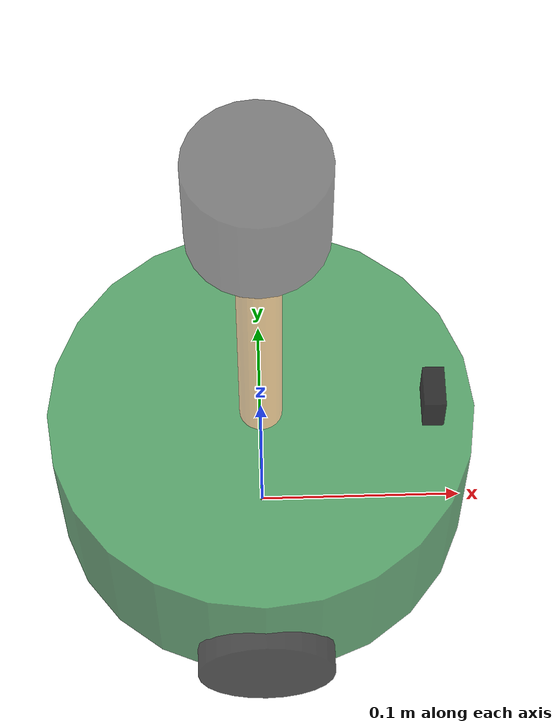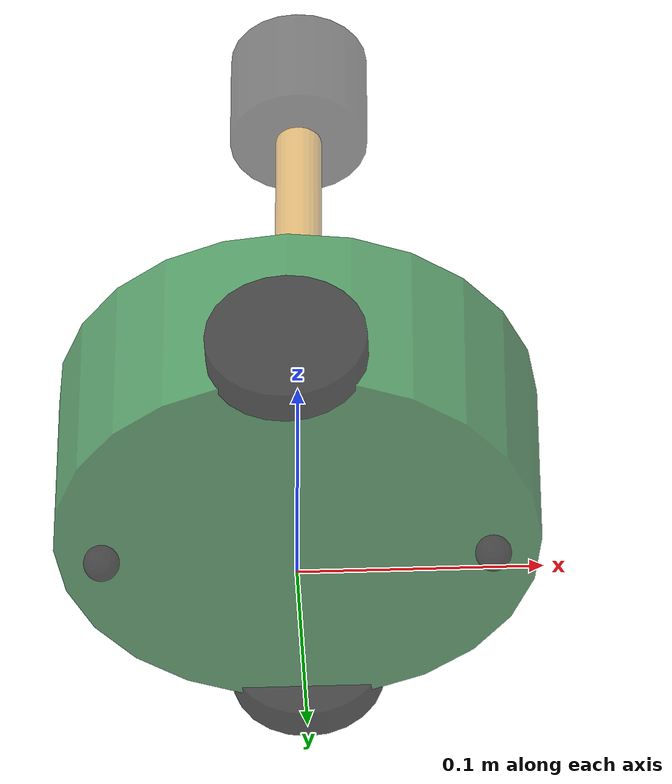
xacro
<robot name="mycar" xmlns:xacro="http://wiki.ros.org/xacro">

    <!-- 包含惯性矩阵文件 -->
    <xacro:include filename="head.xacro"/>
    <!--包含摄像头，雷达和车体的xacro文件 -->
    <xacro:include filename="demo05_car_base.urdf.xacro"/>
    <xacro:include filename="demo06_car_camera.urdf.xacro"/>
    <xacro:include filename="demo07_car_laser.urdf.xacro"/>
    <!-- 运动控制 -->
    <xacro:include filename="gazebo/move.xacro"/>
    <!-- 雷达-->
    <xacro:include filename="gazebo/laser.xacro"/>
    <!-- 摄像头-->
    <xacro:include filename="gazebo/camera.xacro"/>
    <!--kinect-->
    <xacro:include filename="gazebo/kinect.xacro"/>
</robot>

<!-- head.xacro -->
<robot name="base" xmlns:xacro="http://wiki.ros.org/xacro">
    <!-- Macro for inertia matrix -->
    <xacro:macro name="sphere_inertial_matrix" params="m r">
        <inertial>
            <mass value="${m}" />
            <inertia ixx="${2*m*r*r/5}" ixy="0" ixz="0"
                iyy="${2*m*r*r/5}" iyz="0"
                izz="${2*m*r*r/5}" />
        </inertial>
    </xacro:macro>

    <xacro:macro name="cylinder_inertial_matrix" params="m r h">
        <inertial>
            <mass value="${m}" />
            <inertia ixx="${m*(3*r*r+h*h)/12}" ixy="0" ixz="0"
                iyy="${m*(3*r*r+h*h)/12}" iyz="0"
                izz="${m*r*r/2}" />
        </inertial>
    </xacro:macro>

    <xacro:macro name="Box_inertial_matrix" params="m l w h">
        <inertial>
            <mass value="${m}" />
            <inertia ixx="${m*(w*w + l*l)/12}" ixy="0" ixz="0"
                iyy="${m*(w*w + l*l)/12}" iyz="0"
                izz="${m*(w*w + h*h)/12}" />
        </inertial>
    </xacro:macro>
</robot>

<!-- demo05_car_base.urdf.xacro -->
<robot name="mycar" xmlns:xacro="http://wiki.ros.org/xacro">

    <!-- 添加 base_footprint -->
    <!-- 属性 -->
    <xacro:property name="footprint_radius" value="0.001"/>
    <link name="base_footprint">
        <visual>
            <geometry>
                <sphere radius="${footprint_radius}"/>
            </geometry>
        </visual>
    </link>

    <!-- 2.添加底盘 -->
    <!--
        形状: 圆柱
        半径：0.1m
        高度: 0.08m
        离地: 0.015m
    -->
    <!-- 属性封装 -->
    <xacro:property name="base_radius" value="0.1" />
    <xacro:property name="base_length" value="0.08" />
    <xacro:property name="base_mass" value="3.5" />
    <xacro:property name="lidi" value="0.015" />
    <xacro:property name="base_joint_z" value="${base_length / 2 + lidi}" />
    <!-- 2-1.link -->
    <link name="base_link">
        <visual>
            <geometry>
                <cylinder radius="${base_radius}" length="${base_length}" />
            </geometry>

            <origin xyz="0.0 0.0 0.0" rpy="0.0 0.0 0.0"/>

            <material name="baselink_color">
                <color rgba="0.1 0.5 0.2 0.7"/>
            </material>
        </visual>

        <collision>
            <geometry>
                <cylinder radius="${base_radius}" length="${base_length}" />
            </geometry>

            <contact>
                <ode>
                    <min_depth>0.001</min_depth>
                </ode>
            </contact>

            <origin xyz="0.0 0.0 0.0" rpy="0.0 0.0 0.0"/>
        </collision>

        <!-- 调用惯性矩阵函数 -->
        <xacro:cylinder_inertial_matrix m="${base_mass}" r="${base_radius}" h="${base_length}" />
    </link>

        <!-- gezebo 有自己的颜色设置标签 -->
        <gazebo reference="base_link">
            <material>Gazebo/Yellow</material>
        </gazebo>

    <!-- 2-1.joint -->
    <joint name="link2footprint" type="fixed">
        <parent link="base_footprint"/>
        <child link="base_link"/>
        <!-- 关节z上的设置 = 车体高度/2 + 离地间距 -->
        <origin xyz="0 0 ${base_joint_z} " rpy="0 0 0"/>
        <axis xyz="0 0 0"/>
    </joint>

   <!-- 3.添加驱动轮 -->
    <!--
        形状: 圆柱
        半径: 0.0325m
        厚度: 0.015m
    -->
    <!-- 属性封装 -->
    <xacro:property name="wheel_radius" value="0.0325" />
    <xacro:property name="wheel_length" value="0.015" />
    <xacro:property name="wheel_mass" value="0.1" />
    <xacro:property name="PI" value="3.1415927" />
    <!-- 注意: 结果是负数 -->
    <xacro:property name="wheel_joint_z" value="${ (base_length / 2 + lidi -wheel_radius) * -1 }" />

    <!-- 函数封装(方便调用) 底盘就一个不需要调用 而驱动论有两个要调用两次 -->
    <!--
        wheel_name: left 或 right
        flag： 1 或 -1
    -->

    <xacro:macro name="wheel_func" params="wheel_name flag" >

        <!-- 3-1.link -->
        <link name="${wheel_name}_wheel">
            <visual>
                <geometry>
                    <cylinder radius="${wheel_radius}" length="${wheel_length}"/>
                </geometry>

                <origin xyz="0.0 0.0 0.0" rpy="${PI / 2} 0.0 0.0"/>

                <material name="wheel_color">
                    <color rgba="0 0 0 0.7"/>
                </material>
            </visual>
            <collision>
                <geometry>
                    <cylinder radius="${wheel_radius}" length="${wheel_length}"/>
                </geometry>

                <origin xyz="0.0 0.0 0.0" rpy="${PI / 2} 0.0 0.0"/>
            </collision>
            <xacro:cylinder_inertial_matrix m="${wheel_mass}" r="${wheel_radius}" h="${wheel_length}" />
        </link>
        <gazebo reference="${wheel_name}_wheel">
            <material>Gazebo/Red</material>
        </gazebo>

        <!-- 3-2.joint -->
        <joint name="${wheel_name}2link" type="continuous">
            <parent link="base_link"/>
            <child link="${wheel_name}_wheel"/>
            <!--
                x 无偏移
                y 车体半径
                z z = 车体高度/2 + 离地间距 - 车轮半径 记得加负号是负值
            -->
            <origin xyz="0 ${0.1 * flag} ${wheel_joint_z} " rpy="0.0 0.0 0.0"/>
            <axis xyz="0 1 0"/>
        </joint>

    </xacro:macro >
    <!-- 调用宏 -->
    <xacro:wheel_func wheel_name="left" flag="1" />
    <xacro:wheel_func wheel_name="right" flag="-1" />

    <!--  4.添加万向轮 -->
    <!--
        形状: 球
        半径:0.0075m
    -->
    <!-- 属性封装 -->
    <xacro:property name="small_wheel" value="0.0075" />
    <xacro:property name="small_wheel_mass" value="0.05" />
    <xacro:property name="small_joint_z" value="${ (base_length / 2 + lidi - small_wheel) * -1 }" />

    <xacro:macro name="small_wheel_func" params="small_wheel_name flag" >
        <!-- 4-1.link -->
        <link name="${small_wheel_name}_wheel">
            <visual>
                <geometry>
                    <sphere radius="${small_wheel}" />
                </geometry>

                <origin xyz="0.0 0.0 0.0" rpy="0.0 0.0 0.0"/>

                <material name="wheel_color">
                    <color rgba="0 0 0 0.7"/>
                </material>
            </visual>
            <collision>
                <geometry>
                    <sphere radius="${small_wheel}" />
                </geometry>

                <origin xyz="0.0 0.0 0.0" rpy="0.0 0.0 0.0"/>
            </collision>
            <xacro:sphere_inertial_matrix m="${small_wheel_mass}" r="${small_wheel}" />
        </link>
        <gazebo reference="${small_wheel_name}_wheel">
            <material>Gazebo/Red</material>
        </gazebo>

        <!-- 4-2.joint -->
        <joint name="${small_wheel_name}2link" type="continuous">
            <parent link="base_link"/>
            <child link="${small_wheel_name}_wheel"/>
            <!--
                x 相对底盘中心0.08
                y 无偏移
                z z = 车体高度/2 + 离地间距 - 万向车轮半径 记得加负号是负值
            -->
            <origin xyz="${0.08 * flag} 0 ${small_joint_z}" rpy="0.0 0.0 0.0"/>
            <axis xyz="0 1 0"/>
        </joint>

    </xacro:macro >
    <!-- 调用宏 -->
    <xacro:small_wheel_func small_wheel_name="front" flag="1" />
    <xacro:small_wheel_func small_wheel_name="back" flag="-1" />

</robot>

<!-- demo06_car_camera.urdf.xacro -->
<robot name="mycar" xmlns:xacro="http://wiki.ros.org/xacro">
<!-- 摄像头 -->
    <!--
        参数：
        link长宽高
        joint关jie:xyz
     -->
     <!-- 厚度 -->
    <xacro:property name="camera_length" value="0.01"/>
    <xacro:property name="camera_width" value="0.02"/>
    <xacro:property name="camera_height" value="0.02"/>
    <xacro:property name="camera_mass" value="0.01"/>
    <xacro:property name="joint_camera_x" value="0.08"/>
    <xacro:property name="joint_camera_y" value="0"/>
    <xacro:property name="joint_camera_z" value="${base_length/2+camera_height/2}"/>

    <link name="camera">
        <visual>
            <geometry>
                <box size="${camera_length} ${camera_width} ${camera_height}"/>
            </geometry>
            <origin xyz="0.0 0.0 0.0" rpy="0.0 0.0 0.0"/>
            <material name="black">
                <color rgba="0.0 0.0 0.0 0.8"/>
            </material>
        </visual>
        <collision>
            <geometry>
                <box size="${camera_length} ${camera_width} ${camera_height}"/>
            </geometry>
            <origin xyz="0.0 0.0 0.0" rpy="0.0 0.0 0.0"/>
        </collision>
        <xacro:Box_inertial_matrix m="${camera_mass}" l="${camera_length}" w="${camera_width}" h="${camera_height}"/>
    </link>
    <gazebo reference="camera">
        <material>Gazebo/Blue</material>
    </gazebo>
    <joint name="camera2base" type="fixed">
        <parent link="base_link"/>
        <child link="camera"/>
        <origin xyz="${joint_camera_x} ${joint_camera_y} ${joint_camera_z}" rpy="0.0 0.0 0.0"/>
    </joint>

</robot>

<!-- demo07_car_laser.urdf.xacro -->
<robot name="mycar" xmlns:xacro="http://wiki.ros.org/xacro">
   <!-- 雷达 -->
    <!-- 参数
         1.支架大小
         joint偏移量
        2.雷达
        大小
        关节偏移量
     -->
    <xacro:property name="support_radius" value="0.01"/>
    <xacro:property name="support_length" value="0.15"/>
    <xacro:property name="support_mass" value="0.1"/>
    <xacro:property name="laser_radius" value="0.03"/>
    <xacro:property name="laser_length" value="0.05"/>
    <xacro:property name="laser_mass" value="0.15"/>

    <xacro:property name="joint_support_x" value="0"/>
    <xacro:property name="joint_support_y" value="0"/>
    <xacro:property name="joint_support_z" value="${base_length/2+support_length/2}"/>

    <xacro:property name="joint_laser_x" value="0"/>
    <xacro:property name="joint_laser_y" value="0"/>
    <xacro:property name="joint_laser_z" value="${support_length/2+laser_length/2}"/>

    <!-- 支架 -->
    <link name="support">
        <visual>
            <geometry>
                <cylinder radius="${support_radius}" length="${support_length}"/>
            </geometry>
            <material name="yellow">
                <color rgba="0.8 0.5 0.0 0.5"/>
            </material>
        </visual>
        <collision>
            <geometry>
                <cylinder radius="${support_radius}" length="${support_length}"/>
            </geometry>
        </collision>
        <xacro:cylinder_inertial_matrix m="${support_mass}" r="${support_radius}" h="${support_length}"/>
    </link>
    <gazebo reference="support">
        <material>Gazebo/Gray</material>
    </gazebo>

    <joint name="support2base" type="fixed">
        <parent link="base_link"/>
        <child link="support"/>
        <origin xyz="${joint_support_x} ${joint_support_y} ${joint_support_z}" rpy="0.0 0.0 0.0"/>
    </joint>

    <!-- 2.雷达 -->
    <link name="laser">
        <visual>
            <geometry>
                <cylinder radius="${laser_radius}" length="${laser_length}"/>
            </geometry>
            <material name="black">
                <color rgba="0 0 0.0 0.5"/>
            </material>
        </visual>
        <collision>
            <geometry>
                <cylinder radius="${laser_radius}" length="${laser_length}"/>
            </geometry>
        </collision>
        <xacro:cylinder_inertial_matrix m="${laser_mass}" r="${laser_radius}" h="${laser_length}"/>
    </link>
    <gazebo reference="laser">
        <material>Gazebo/Gray</material>
    </gazebo>
    <joint name="laser2support" type="fixed">
        <parent link="support"/>
        <child link="laser"/>
        <origin xyz="${joint_laser_x} ${joint_laser_y} ${joint_laser_z}" rpy="0.0 0.0 0.0"/>
    </joint>

</robot>
